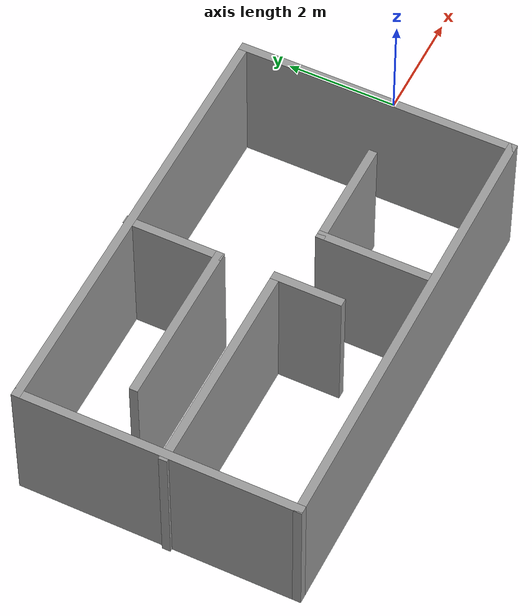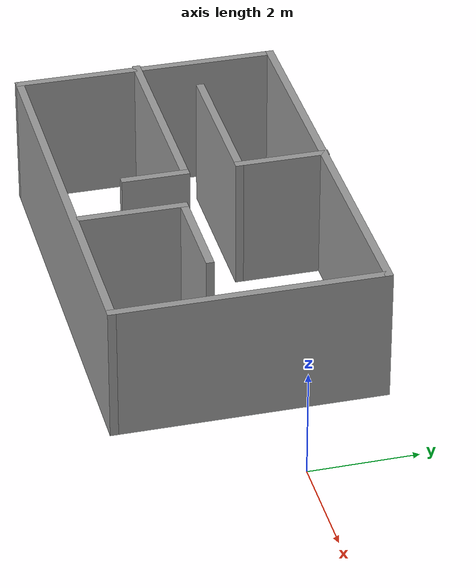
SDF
<?xml version='1.0'?>
<sdf version='1.7'>
  <model name='room'>
    <pose>-4.93034 -0.490199 0 0 -0 0</pose>
    <link name='Wall_1'>
      <collision name='Wall_1_Collision'>
        <geometry>
          <box>
            <size>8 0.15 2.5</size>
          </box>
        </geometry>
        <pose>0 0 1.25 0 -0 0</pose>
      </collision>
      <visual name='Wall_1_Visual'>
        <pose>0 0 1.25 0 -0 0</pose>
        <geometry>
          <box>
            <size>8 0.15 2.5</size>
          </box>
        </geometry>
        <material>
          <script>
            <uri>file://media/materials/scripts/gazebo.material</uri>
            <name>Gazebo/Grey</name>
          </script>
          <ambient>1 1 1 1</ambient>
        </material>
        <meta>
          <layer>0</layer>
        </meta>
      </visual>
      <pose>-0.877135 2.41613 0 0 -0 0</pose>
    </link>
    <link name='Wall_10'>
      <collision name='Wall_10_Collision'>
        <geometry>
          <box>
            <size>1.75 0.15 2.5</size>
          </box>
        </geometry>
        <pose>0 0 1.25 0 -0 0</pose>
      </collision>
      <visual name='Wall_10_Visual'>
        <pose>0 0 1.25 0 -0 0</pose>
        <geometry>
          <box>
            <size>1.75 0.15 2.5</size>
          </box>
        </geometry>
        <material>
          <script>
            <uri>file://media/materials/scripts/gazebo.material</uri>
            <name>Gazebo/Grey</name>
          </script>
          <ambient>1 1 1 1</ambient>
        </material>
        <meta>
          <layer>0</layer>
        </meta>
      </visual>
      <pose>-1.04264 1.63387 0 0 -0 -1.5708</pose>
    </link>
    <link name='Wall_11'>
      <collision name='Wall_11_Collision'>
        <geometry>
          <box>
            <size>3 0.15 2.5</size>
          </box>
        </geometry>
        <pose>0 0 1.25 0 -0 0</pose>
      </collision>
      <visual name='Wall_11_Visual'>
        <pose>0 0 1.25 0 -0 0</pose>
        <geometry>
          <box>
            <size>3 0.15 2.5</size>
          </box>
        </geometry>
        <material>
          <script>
            <uri>file://media/materials/scripts/gazebo.material</uri>
            <name>Gazebo/Grey</name>
          </script>
          <ambient>1 1 1 1</ambient>
        </material>
        <meta>
          <layer>0</layer>
        </meta>
      </visual>
      <pose>-2.46764 0.833867 0 0 -0 3.14159</pose>
    </link>
    <link name='Wall_13'>
      <collision name='Wall_13_Collision'>
        <geometry>
          <box>
            <size>2 0.15 2.5</size>
          </box>
        </geometry>
        <pose>0 0 1.25 0 -0 0</pose>
      </collision>
      <visual name='Wall_13_Visual'>
        <pose>0 0 1.25 0 -0 0</pose>
        <geometry>
          <box>
            <size>2 0.15 2.5</size>
          </box>
        </geometry>
        <material>
          <script>
            <uri>file://media/materials/scripts/gazebo.material</uri>
            <name>Gazebo/Grey</name>
          </script>
          <ambient>1 1 1 1</ambient>
        </material>
        <meta>
          <layer>0</layer>
        </meta>
      </visual>
      <pose>0.056835 -1.37597 0 0 -0 1.5708</pose>
    </link>
    <link name='Wall_14'>
      <collision name='Wall_14_Collision'>
        <geometry>
          <box>
            <size>2 0.15 2.5</size>
          </box>
        </geometry>
        <pose>0 0 1.25 0 -0 0</pose>
      </collision>
      <visual name='Wall_14_Visual'>
        <pose>0 0 1.25 0 -0 0</pose>
        <geometry>
          <box>
            <size>2 0.15 2.5</size>
          </box>
        </geometry>
        <material>
          <script>
            <uri>file://media/materials/scripts/gazebo.material</uri>
            <name>Gazebo/Grey</name>
          </script>
          <ambient>1 1 1 1</ambient>
        </material>
        <meta>
          <layer>0</layer>
        </meta>
      </visual>
      <pose>0.981835 -0.450969 0 0 -0 0</pose>
    </link>
    <link name='Wall_3'>
      <collision name='Wall_3_Collision'>
        <geometry>
          <box>
            <size>5 0.15 2.5</size>
          </box>
        </geometry>
        <pose>0 0 1.25 0 -0 0</pose>
      </collision>
      <visual name='Wall_3_Visual'>
        <pose>0 0 1.25 0 -0 0</pose>
        <geometry>
          <box>
            <size>5 0.15 2.5</size>
          </box>
        </geometry>
        <material>
          <script>
            <uri>file://media/materials/scripts/gazebo.material</uri>
            <name>Gazebo/Grey</name>
          </script>
          <ambient>1 1 1 1</ambient>
        </material>
        <meta>
          <layer>0</layer>
        </meta>
      </visual>
      <pose>3.04786 -0.008867 0 0 -0 -1.5708</pose>
    </link>
    <link name='Wall_4'>
      <collision name='Wall_4_Collision'>
        <geometry>
          <box>
            <size>8 0.15 2.5</size>
          </box>
        </geometry>
        <pose>0 0 1.25 0 -0 0</pose>
      </collision>
      <visual name='Wall_4_Visual'>
        <pose>0 0 1.25 0 -0 0</pose>
        <geometry>
          <box>
            <size>8 0.15 2.5</size>
          </box>
        </geometry>
        <material>
          <script>
            <uri>file://media/materials/scripts/gazebo.material</uri>
            <name>Gazebo/Grey</name>
          </script>
          <ambient>1 1 1 1</ambient>
        </material>
        <meta>
          <layer>0</layer>
        </meta>
      </visual>
      <pose>-0.877135 -2.43387 0 0 -0 3.14159</pose>
    </link>
    <link name='Wall_5'>
      <collision name='Wall_5_Collision'>
        <geometry>
          <box>
            <size>5 0.15 2.5</size>
          </box>
        </geometry>
        <pose>0 0 1.25 0 -0 0</pose>
      </collision>
      <visual name='Wall_5_Visual'>
        <pose>0 0 1.25 0 -0 0</pose>
        <geometry>
          <box>
            <size>5 0.15 2.5</size>
          </box>
        </geometry>
        <material>
          <script>
            <uri>file://media/materials/scripts/gazebo.material</uri>
            <name>Gazebo/Grey</name>
          </script>
          <ambient>1 1 1 1</ambient>
        </material>
        <meta>
          <layer>0</layer>
        </meta>
      </visual>
      <pose>-4.80213 -0.008867 0 0 -0 1.5708</pose>
    </link>
    <link name='Wall_7'>
      <collision name='Wall_7_Collision'>
        <geometry>
          <box>
            <size>4 0.15 2.5</size>
          </box>
        </geometry>
        <pose>0 0 1.25 0 -0 0</pose>
      </collision>
      <visual name='Wall_7_Visual'>
        <pose>0 0 1.25 0 -0 0</pose>
        <geometry>
          <box>
            <size>4 0.15 2.5</size>
          </box>
        </geometry>
        <material>
          <script>
            <uri>file://media/materials/scripts/gazebo.material</uri>
            <name>Gazebo/Grey</name>
          </script>
          <ambient>1 1 1 1</ambient>
        </material>
        <meta>
          <layer>0</layer>
        </meta>
      </visual>
      <pose>-2.93034 -0.172953 0 0 -0 0</pose>
    </link>
    <link name='Wall_8'>
      <collision name='Wall_8_Collision'>
        <geometry>
          <box>
            <size>1.25 0.15 2.5</size>
          </box>
        </geometry>
        <pose>0 0 1.25 0 -0 0</pose>
      </collision>
      <visual name='Wall_8_Visual'>
        <pose>0 0 1.25 0 -0 0</pose>
        <geometry>
          <box>
            <size>1.25 0.15 2.5</size>
          </box>
        </geometry>
        <material>
          <script>
            <uri>file://media/materials/scripts/gazebo.material</uri>
            <name>Gazebo/Grey</name>
          </script>
          <ambient>1 1 1 1</ambient>
        </material>
        <meta>
          <layer>0</layer>
        </meta>
      </visual>
      <pose>-1.00534 -0.722953 0 0 -0 -1.5708</pose>
    </link>
    <static>1</static>
  </model>
</sdf>
